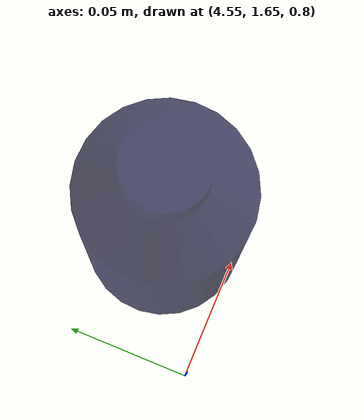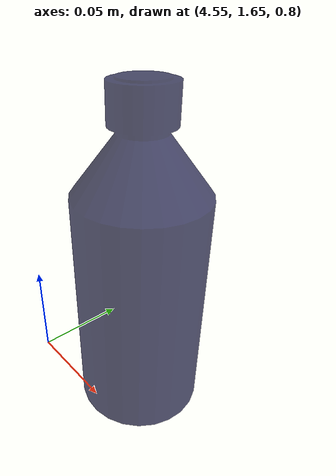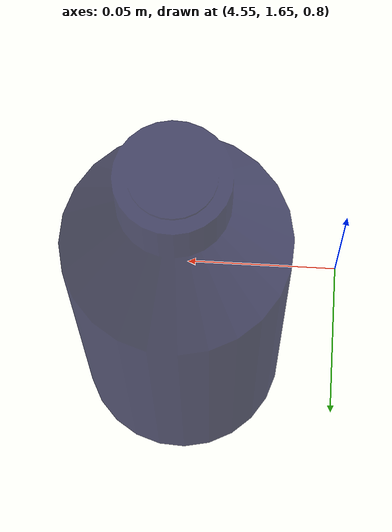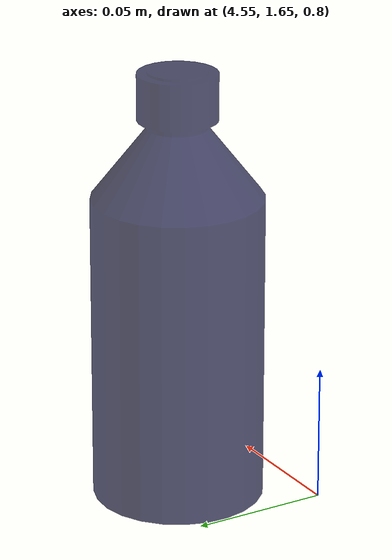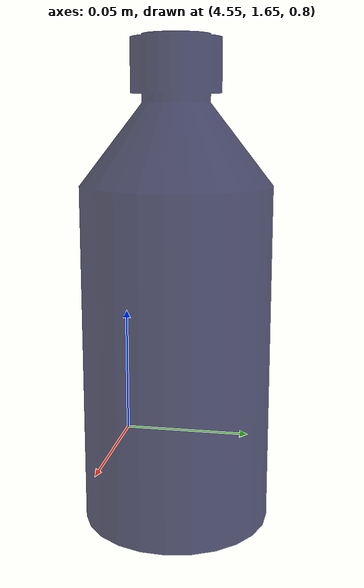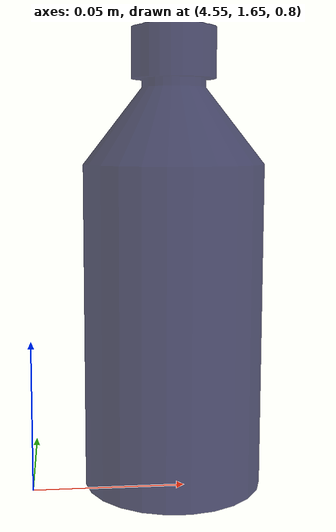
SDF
<?xml version="1.0" ?>
<sdf version="1.4">
  <model name="bottle">
  <pose>4.6 1.68 0.79 0 0 0</pose>
    <link name="link">
     <inertial>
	<mass>0.39</mass>
	<pose>0 0 0.08 0 0 0</pose>
        <inertia>
          <ixx>0.00055575</ixx>
          <ixy>0</ixy>
          <ixz>0</ixz>
          <iyy>0.00055575</iyy>
          <iyz>0</iyz>
          <izz>0.0001755</izz>
	</inertia>
     </inertial>
     <collision name="collision">
        <geometry>
          <mesh>
            <uri>model://bottle/meshes/bottle.dae</uri>
<scale>0.02 0.02 0.02</scale>
          </mesh>
        </geometry>
        <surface>
          <friction>
            <ode>
              <mu>1.0</mu>
              <mu2>1.0</mu2>
            </ode>
          </friction>
          <contact>
            <ode>
              <kp>10000000.0</kp>
              <kd>1.0</kd>
              <min_depth>0.001</min_depth>
              <max_vel>0.1</max_vel>
            </ode>
          </contact>
        </surface>
      </collision>
      <visual name="visual">
        <geometry>
          <mesh>
            <uri>model://bottle/meshes/bottle.dae</uri>
            <scale>0.02 0.02 0.02</scale>
          </mesh>
        </geometry>
	<material>
            <ambient>0.4 0 0.7 0.4</ambient>
	    <diffuse>0 0 0.2 .70</diffuse>
	    <specular>0 0 0 1</specular>
	    <emissive>0 0 0 0</emissive>
	</material>
      </visual>
    </link>
    <static>false</static>
  </model>
</sdf>
